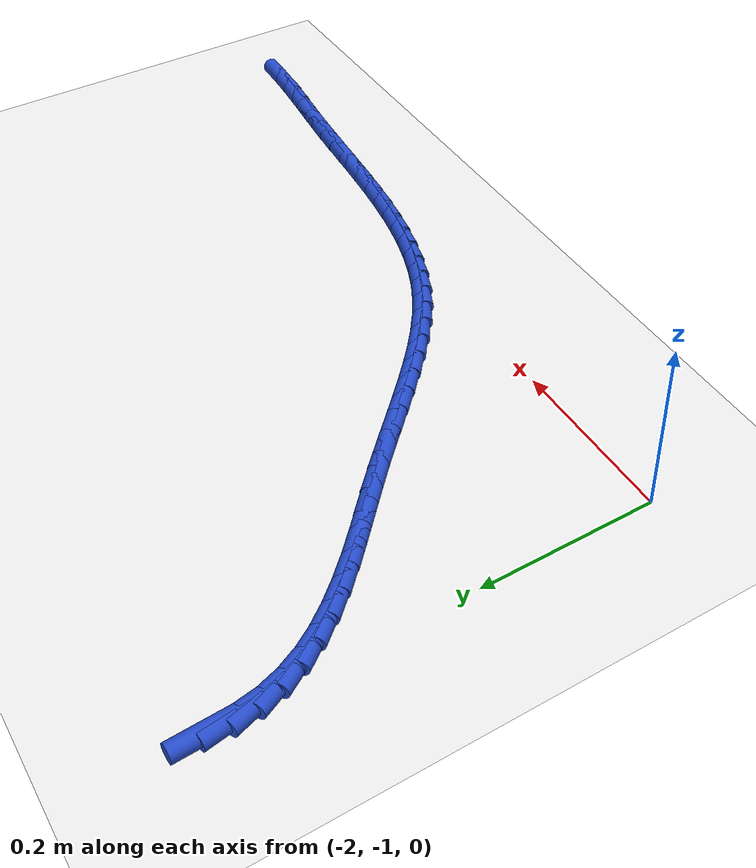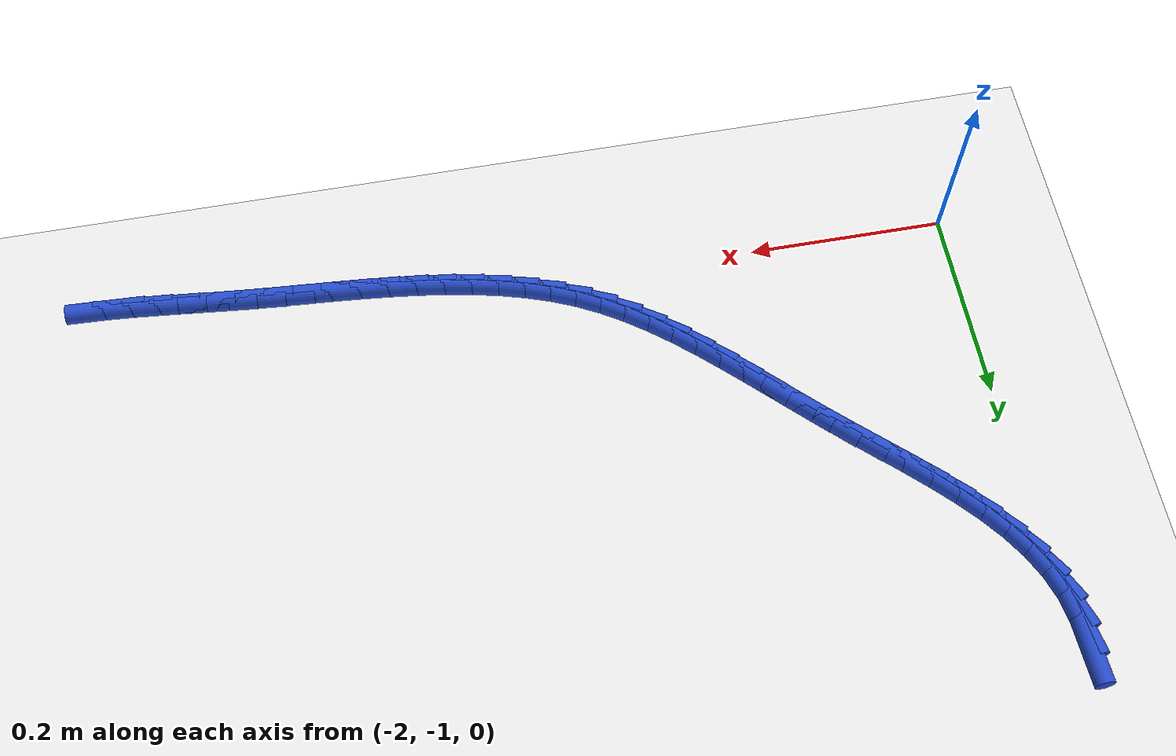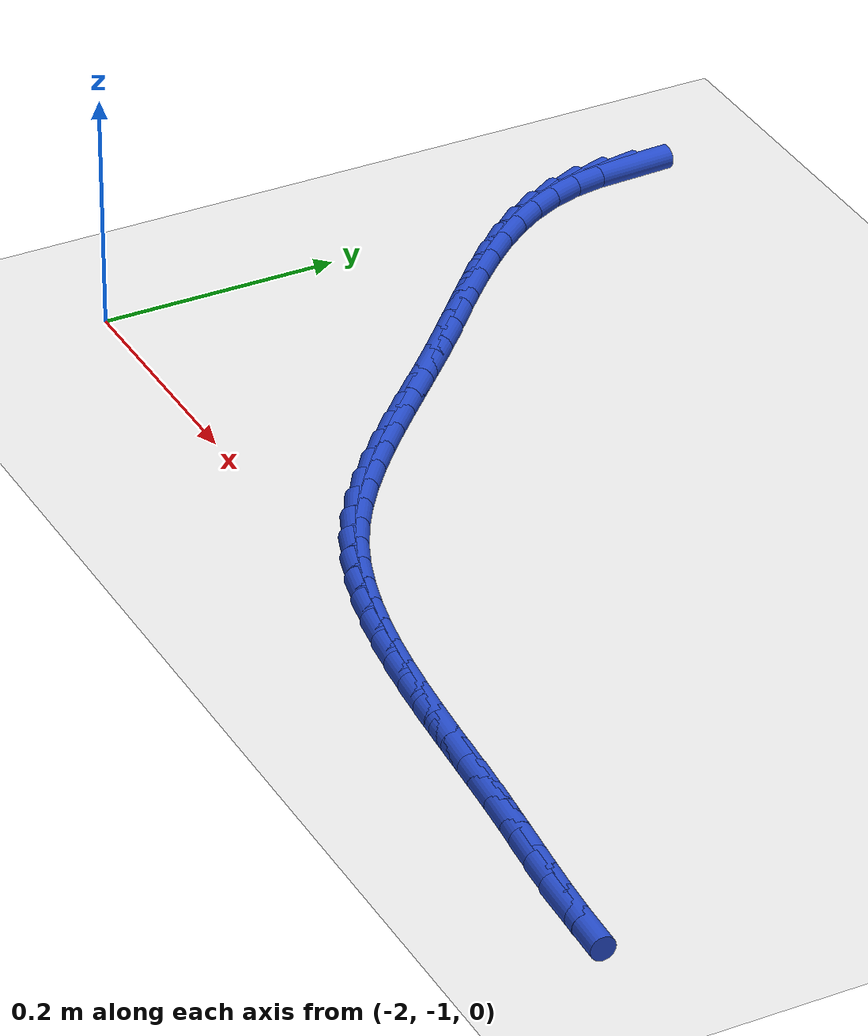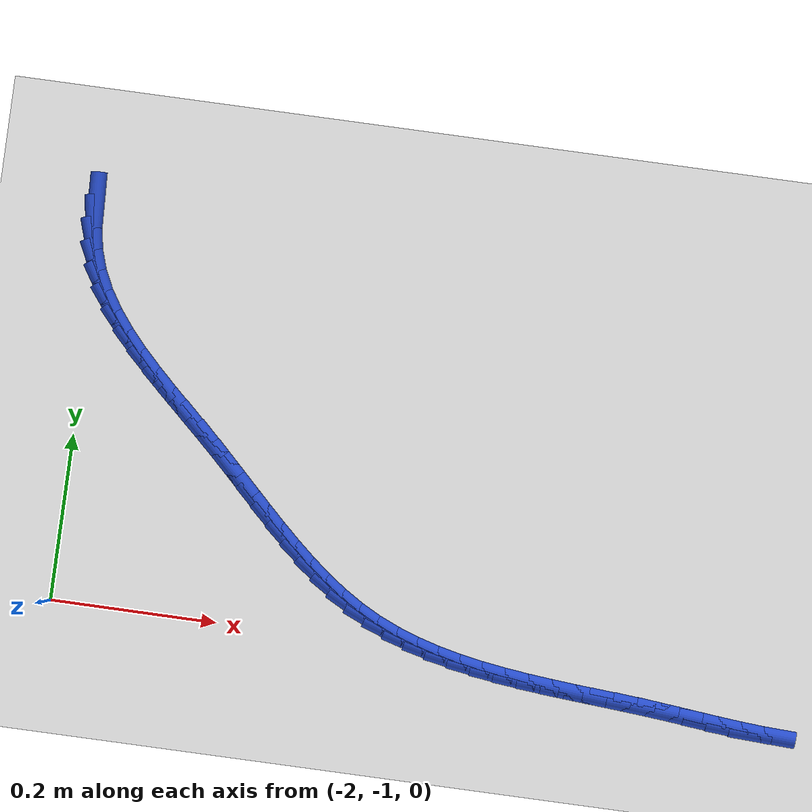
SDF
<sdf version="1.6">
 <world name="default">
  <model name="ground_plane">
   <static>1</static>
   <link name="link">
    <collision name="collision">
     <geometry><plane><normal>0 0 1</normal><size>100 100</size></plane></geometry>
     <surface><friction><ode><mu>100</mu><mu2>50</mu2></ode></friction></surface>
    </collision>
    <visual name="visual">
     <cast_shadows>0</cast_shadows>
     <geometry><plane><normal>0 0 1</normal><size>100 100</size></plane></geometry>
     <material>
      <script><uri>file://media/materials/scripts/gazebo.material</uri><name>Gazebo/WhiteGlow</name></script>
     </material>
    </visual>
   </link>
  </model>
  <model name="line">
   <link name="link_140">
    <pose>-2.0096430775557548 -0.5261544856233934 0.01 0 1.57 -1.5280074565273878</pose>
    <collision name="collision">
     <geometry><cylinder><radius>0.01</radius><length>0.08</length></cylinder></geometry>
    </collision>
    <visual name="visual">
     <material>
      <script><name>Gazebo/Blue</name><uri>file://media/materials/scripts/gazebo.material</uri></script>
     </material>
     <geometry><cylinder><radius>0.01</radius><length>0.08</length></cylinder></geometry>
    </visual>
   </link>
   <link name="link_141">
    <pose>-2.008498726055248 -0.5528823009448839 0.01 0 1.57 -1.4084340751156448</pose>
    <collision name="collision">
     <geometry><cylinder><radius>0.01</radius><length>0.08</length></cylinder></geometry>
    </collision>
    <visual name="visual">
     <material>
      <script><name>Gazebo/Blue</name><uri>file://media/materials/scripts/gazebo.material</uri></script>
     </material>
     <geometry><cylinder><radius>0.01</radius><length>0.08</length></cylinder></geometry>
    </visual>
   </link>
   <link name="link_142">
    <pose>-2.0042836034575258 -0.5786149962680517 0.01 0 1.57 -1.2595297627954403</pose>
    <collision name="collision">
     <geometry><cylinder><radius>0.01</radius><length>0.08</length></cylinder></geometry>
    </collision>
    <visual name="visual">
     <material>
      <script><name>Gazebo/Blue</name><uri>file://media/materials/scripts/gazebo.material</uri></script>
     </material>
     <geometry><cylinder><radius>0.01</radius><length>0.08</length></cylinder></geometry>
    </visual>
   </link>
   <link name="link_143">
    <pose>-1.9963625961331624 -0.6032354553919835 0.01 0 1.57 -1.1216560305754468</pose>
    <collision name="collision">
     <geometry><cylinder><radius>0.01</radius><length>0.08</length></cylinder></geometry>
    </collision>
    <visual name="visual">
     <material>
      <script><name>Gazebo/Blue</name><uri>file://media/materials/scripts/gazebo.material</uri></script>
     </material>
     <geometry><cylinder><radius>0.01</radius><length>0.08</length></cylinder></geometry>
    </visual>
   </link>
   <link name="link_144">
    <pose>-1.9849880988924686 -0.6268342325624374 0.01 0 1.57 -1.0073226256194265</pose>
    <collision name="collision">
     <geometry><cylinder><radius>0.01</radius><length>0.08</length></cylinder></geometry>
    </collision>
    <visual name="visual">
     <material>
      <script><name>Gazebo/Blue</name><uri>file://media/materials/scripts/gazebo.material</uri></script>
     </material>
     <geometry><cylinder><radius>0.01</radius><length>0.08</length></cylinder></geometry>
    </visual>
   </link>
   <link name="link_145">
    <pose>-1.9706339573745288 -0.6495536998901822 0.01 0 1.57 -0.9165226039413975</pose>
    <collision name="collision">
     <geometry><cylinder><radius>0.01</radius><length>0.08</length></cylinder></geometry>
    </collision>
    <visual name="visual">
     <material>
      <script><name>Gazebo/Blue</name><uri>file://media/materials/scripts/gazebo.material</uri></script>
     </material>
     <geometry><cylinder><radius>0.01</radius><length>0.08</length></cylinder></geometry>
    </visual>
   </link>
   <link name="link_146">
    <pose>-1.9537740172184277 -0.6715362294859879 0.01 0 1.57 -0.8472872394314085</pose>
    <collision name="collision">
     <geometry><cylinder><radius>0.01</radius><length>0.08</length></cylinder></geometry>
    </collision>
    <visual name="visual">
     <material>
      <script><name>Gazebo/Blue</name><uri>file://media/materials/scripts/gazebo.material</uri></script>
     </material>
     <geometry><cylinder><radius>0.01</radius><length>0.08</length></cylinder></geometry>
    </visual>
   </link>
   <link name="link_147">
    <pose>-1.9348821240632519 -0.6929241934606245 0.01 0 1.57 -0.7971352322259211</pose>
    <collision name="collision">
     <geometry><cylinder><radius>0.01</radius><length>0.08</length></cylinder></geometry>
    </collision>
    <visual name="visual">
     <material>
      <script><name>Gazebo/Blue</name><uri>file://media/materials/scripts/gazebo.material</uri></script>
     </material>
     <geometry><cylinder><radius>0.01</radius><length>0.08</length></cylinder></geometry>
    </visual>
   </link>
   <link name="link_148">
    <pose>-1.914432123548085 -0.7138599639248602 0.01 0 1.57 -0.7638571737055149</pose>
    <collision name="collision">
     <geometry><cylinder><radius>0.01</radius><length>0.08</length></cylinder></geometry>
    </collision>
    <visual name="visual">
     <material>
      <script><name>Gazebo/Blue</name><uri>file://media/materials/scripts/gazebo.material</uri></script>
     </material>
     <geometry><cylinder><radius>0.01</radius><length>0.08</length></cylinder></geometry>
    </visual>
   </link>
   <link name="link_149">
    <pose>-1.8928978613120149 -0.7344859129894655 0.01 0 1.57 -0.7458401071048975</pose>
    <collision name="collision">
     <geometry><cylinder><radius>0.01</radius><length>0.08</length></cylinder></geometry>
    </collision>
    <visual name="visual">
     <material>
      <script><name>Gazebo/Blue</name><uri>file://media/materials/scripts/gazebo.material</uri></script>
     </material>
     <geometry><cylinder><radius>0.01</radius><length>0.08</length></cylinder></geometry>
    </visual>
   </link>
   <link name="link_150">
    <pose>-1.8707531829941249 -0.7549444127652096 0.01 0 1.57 -0.7421653649475559</pose>
    <collision name="collision">
     <geometry><cylinder><radius>0.01</radius><length>0.08</length></cylinder></geometry>
    </collision>
    <visual name="visual">
     <material>
      <script><name>Gazebo/Blue</name><uri>file://media/materials/scripts/gazebo.material</uri></script>
     </material>
     <geometry><cylinder><radius>0.01</radius><length>0.08</length></cylinder></geometry>
    </visual>
   </link>
   <link name="link_151">
    <pose>-1.8484719342335005 -0.7753778353628621 0.01 0 1.57 -0.7524859376159344</pose>
    <collision name="collision">
     <geometry><cylinder><radius>0.01</radius><length>0.08</length></cylinder></geometry>
    </collision>
    <visual name="visual">
     <material>
      <script><name>Gazebo/Blue</name><uri>file://media/materials/scripts/gazebo.material</uri></script>
     </material>
     <geometry><cylinder><radius>0.01</radius><length>0.08</length></cylinder></geometry>
    </visual>
   </link>
   <link name="link_152">
    <pose>-1.8265241599310489 -0.7959264535682691 0.01 0 1.57 -0.7686079183546252</pose>
    <collision name="collision">
     <geometry><cylinder><radius>0.01</radius><length>0.08</length></cylinder></geometry>
    </collision>
    <visual name="visual">
     <material>
      <script><name>Gazebo/Blue</name><uri>file://media/materials/scripts/gazebo.material</uri></script>
     </material>
     <geometry><cylinder><radius>0.01</radius><length>0.08</length></cylinder></geometry>
    </visual>
   </link>
   <link name="link_153">
    <pose>-1.8051441373951091 -0.8166003147321077 0.01 0 1.57 -0.7771405462749347</pose>
    <collision name="collision">
     <geometry><cylinder><radius>0.01</radius><length>0.08</length></cylinder></geometry>
    </collision>
    <visual name="visual">
     <material>
      <script><name>Gazebo/Blue</name><uri>file://media/materials/scripts/gazebo.material</uri></script>
     </material>
     <geometry><cylinder><radius>0.01</radius><length>0.08</length></cylinder></geometry>
    </visual>
   </link>
   <link name="link_154">
    <pose>-1.7841961927001513 -0.8372051248878406 0.01 0 1.57 -0.776612072666279</pose>
    <collision name="collision">
     <geometry><cylinder><radius>0.01</radius><length>0.08</length></cylinder></geometry>
    </collision>
    <visual name="visual">
     <material>
      <script><name>Gazebo/Blue</name><uri>file://media/materials/scripts/gazebo.material</uri></script>
     </material>
     <geometry><cylinder><radius>0.01</radius><length>0.08</length></cylinder></geometry>
    </visual>
   </link>
   <link name="link_155">
    <pose>-1.7635122949679185 -0.8575287178151434 0.01 0 1.57 -0.766654491535598</pose>
    <collision name="collision">
     <geometry><cylinder><radius>0.01</radius><length>0.08</length></cylinder></geometry>
    </collision>
    <visual name="visual">
     <material>
      <script><name>Gazebo/Blue</name><uri>file://media/materials/scripts/gazebo.material</uri></script>
     </material>
     <geometry><cylinder><radius>0.01</radius><length>0.08</length></cylinder></geometry>
    </visual>
   </link>
   <link name="link_156">
    <pose>-1.7429244133201567 -0.8773589272936888 0.01 0 1.57 -0.7468285419045488</pose>
    <collision name="collision">
     <geometry><cylinder><radius>0.01</radius><length>0.08</length></cylinder></geometry>
    </collision>
    <visual name="visual">
     <material>
      <script><name>Gazebo/Blue</name><uri>file://media/materials/scripts/gazebo.material</uri></script>
     </material>
     <geometry><cylinder><radius>0.01</radius><length>0.08</length></cylinder></geometry>
    </visual>
   </link>
   <link name="link_157">
    <pose>-1.722264516878611 -0.896483587103153 0.01 0 1.57 -0.716644197941528</pose>
    <collision name="collision">
     <geometry><cylinder><radius>0.01</radius><length>0.08</length></cylinder></geometry>
    </collision>
    <visual name="visual">
     <material>
      <script><name>Gazebo/Blue</name><uri>file://media/materials/scripts/gazebo.material</uri></script>
     </material>
     <geometry><cylinder><radius>0.01</radius><length>0.08</length></cylinder></geometry>
    </visual>
   </link>
   <link name="link_158">
    <pose>-1.7013645747650252 -0.9146905310232101 0.01 0 1.57 -0.6756173266168611</pose>
    <collision name="collision">
     <geometry><cylinder><radius>0.01</radius><length>0.08</length></cylinder></geometry>
    </collision>
    <visual name="visual">
     <material>
      <script><name>Gazebo/Blue</name><uri>file://media/materials/scripts/gazebo.material</uri></script>
     </material>
     <geometry><cylinder><radius>0.01</radius><length>0.08</length></cylinder></geometry>
    </visual>
   </link>
   <link name="link_159">
    <pose>-1.6800565561011436 -0.9317675928335342 0.01 0 1.57 -0.6233739973266872</pose>
    <collision name="collision">
     <geometry><cylinder><radius>0.01</radius><length>0.08</length></cylinder></geometry>
    </collision>
    <visual name="visual">
     <material>
      <script><name>Gazebo/Blue</name><uri>file://media/materials/scripts/gazebo.material</uri></script>
     </material>
     <geometry><cylinder><radius>0.01</radius><length>0.08</length></cylinder></geometry>
    </visual>
   </link>
   <link name="link_160">
    <pose>-1.658172430008711 -0.9475026063138009 0.01 0 1.57 -0.5598102436202478</pose>
    <collision name="collision">
     <geometry><cylinder><radius>0.01</radius><length>0.08</length></cylinder></geometry>
    </collision>
    <visual name="visual">
     <material>
      <script><name>Gazebo/Blue</name><uri>file://media/materials/scripts/gazebo.material</uri></script>
     </material>
     <geometry><cylinder><radius>0.01</radius><length>0.08</length></cylinder></geometry>
    </visual>
   </link>
   <link name="link_161">
    <pose>-1.6355441656094718 -0.9616834052436842 0.01 0 1.57 -0.4854051199218421</pose>
    <collision name="collision">
     <geometry><cylinder><radius>0.01</radius><length>0.08</length></cylinder></geometry>
    </collision>
    <visual name="visual">
     <material>
      <script><name>Gazebo/Blue</name><uri>file://media/materials/scripts/gazebo.material</uri></script>
     </material>
     <geometry><cylinder><radius>0.01</radius><length>0.08</length></cylinder></geometry>
    </visual>
   </link>
   <link name="link_162">
    <pose>-1.612005308948386 -0.974100161509386 0.01 0 1.57 -0.40764064463473265</pose>
    <collision name="collision">
     <geometry><cylinder><radius>0.01</radius><length>0.08</length></cylinder></geometry>
    </collision>
    <visual name="visual">
     <material>
      <script><name>Gazebo/Blue</name><uri>file://media/materials/scripts/gazebo.material</uri></script>
     </material>
     <geometry><cylinder><radius>0.01</radius><length>0.08</length></cylinder></geometry>
    </visual>
   </link>
   <link name="link_163">
    <pose>-1.5874870675320816 -0.9846878497996229 0.01 0 1.57 -0.33758710846364953</pose>
    <collision name="collision">
     <geometry><cylinder><radius>0.01</radius><length>0.08</length></cylinder></geometry>
    </collision>
    <visual name="visual">
     <material>
      <script><name>Gazebo/Blue</name><uri>file://media/materials/scripts/gazebo.material</uri></script>
     </material>
     <geometry><cylinder><radius>0.01</radius><length>0.08</length></cylinder></geometry>
    </visual>
   </link>
   <link name="link_164">
    <pose>-1.5620738020961376 -0.9936085253360892 0.01 0 1.57 -0.27642340447862057</pose>
    <collision name="collision">
     <geometry><cylinder><radius>0.01</radius><length>0.08</length></cylinder></geometry>
    </collision>
    <visual name="visual">
     <material>
      <script><name>Gazebo/Blue</name><uri>file://media/materials/scripts/gazebo.material</uri></script>
     </material>
     <geometry><cylinder><radius>0.01</radius><length>0.08</length></cylinder></geometry>
    </visual>
   </link>
   <link name="link_165">
    <pose>-1.535863257864375 -1.0010440885422023 0.01 0 1.57 -0.2240568952081737</pose>
    <collision name="collision">
     <geometry><cylinder><radius>0.01</radius><length>0.08</length></cylinder></geometry>
    </collision>
    <visual name="visual">
     <material>
      <script><name>Gazebo/Blue</name><uri>file://media/materials/scripts/gazebo.material</uri></script>
     </material>
     <geometry><cylinder><radius>0.01</radius><length>0.08</length></cylinder></geometry>
    </visual>
   </link>
   <link name="link_166">
    <pose>-1.5089531800606135 -1.0071764398413798 0.01 0 1.57 -0.18016600531104532</pose>
    <collision name="collision">
     <geometry><cylinder><radius>0.01</radius><length>0.08</length></cylinder></geometry>
    </collision>
    <visual name="visual">
     <material>
      <script><name>Gazebo/Blue</name><uri>file://media/materials/scripts/gazebo.material</uri></script>
     </material>
     <geometry><cylinder><radius>0.01</radius><length>0.08</length></cylinder></geometry>
    </visual>
   </link>
   <link name="link_167">
    <pose>-1.481441313908672 -1.012187479657038 0.01 0 1.57 -0.1443222908931868</pose>
    <collision name="collision">
     <geometry><cylinder><radius>0.01</radius><length>0.08</length></cylinder></geometry>
    </collision>
    <visual name="visual">
     <material>
      <script><name>Gazebo/Blue</name><uri>file://media/materials/scripts/gazebo.material</uri></script>
     </material>
     <geometry><cylinder><radius>0.01</radius><length>0.08</length></cylinder></geometry>
    </visual>
   </link>
   <link name="link_168">
    <pose>-1.4534254046323711 -1.0162591084125943 0.01 0 1.57 -0.11607893602324391</pose>
    <collision name="collision">
     <geometry><cylinder><radius>0.01</radius><length>0.08</length></cylinder></geometry>
    </collision>
    <visual name="visual">
     <material>
      <script><name>Gazebo/Blue</name><uri>file://media/materials/scripts/gazebo.material</uri></script>
     </material>
     <geometry><cylinder><radius>0.01</radius><length>0.08</length></cylinder></geometry>
    </visual>
   </link>
   <link name="link_169">
    <pose>-1.425003197455531 -1.0195732265314659 0.01 0 1.57 -0.09502914479789382</pose>
    <collision name="collision">
     <geometry><cylinder><radius>0.01</radius><length>0.08</length></cylinder></geometry>
    </collision>
    <visual name="visual">
     <material>
      <script><name>Gazebo/Blue</name><uri>file://media/materials/scripts/gazebo.material</uri></script>
     </material>
     <geometry><cylinder><radius>0.01</radius><length>0.08</length></cylinder></geometry>
    </visual>
   </link>
   <link name="link_170">
    <pose>-1.3962724376019697 -1.0223117344370696 0.01 0 1.57 -0.08084178042679095</pose>
    <collision name="collision">
     <geometry><cylinder><radius>0.01</radius><length>0.08</length></cylinder></geometry>
    </collision>
    <visual name="visual">
     <material>
      <script><name>Gazebo/Blue</name><uri>file://media/materials/scripts/gazebo.material</uri></script>
     </material>
     <geometry><cylinder><radius>0.01</radius><length>0.08</length></cylinder></geometry>
    </visual>
   </link>
   <link name="link_171">
    <pose>-1.3673308702955098 -1.0246565325528225 0.01 0 1.57 -0.07328158130507874</pose>
    <collision name="collision">
     <geometry><cylinder><radius>0.01</radius><length>0.08</length></cylinder></geometry>
    </collision>
    <visual name="visual">
     <material>
      <script><name>Gazebo/Blue</name><uri>file://media/materials/scripts/gazebo.material</uri></script>
     </material>
     <geometry><cylinder><radius>0.01</radius><length>0.08</length></cylinder></geometry>
    </visual>
   </link>
   <link name="link_172">
    <pose>-1.3382762407599695 -1.0267895213021416 0.01 0 1.57 -0.07221967881973698</pose>
    <collision name="collision">
     <geometry><cylinder><radius>0.01</radius><length>0.08</length></cylinder></geometry>
    </collision>
    <visual name="visual">
     <material>
      <script><name>Gazebo/Blue</name><uri>file://media/materials/scripts/gazebo.material</uri></script>
     </material>
     <geometry><cylinder><radius>0.01</radius><length>0.08</length></cylinder></geometry>
    </visual>
   </link>
   <link name="link_173">
    <pose>-1.3092062942191687 -1.0288926011084443 0.01 0 1.57 -0.07763819185512785</pose>
    <collision name="collision">
     <geometry><cylinder><radius>0.01</radius><length>0.08</length></cylinder></geometry>
    </collision>
    <visual name="visual">
     <material>
      <script><name>Gazebo/Blue</name><uri>file://media/materials/scripts/gazebo.material</uri></script>
     </material>
     <geometry><cylinder><radius>0.01</radius><length>0.08</length></cylinder></geometry>
    </visual>
   </link>
   <link name="link_174">
    <pose>-1.2802187758969277 -1.0311476723951478 0.01 0 1.57 -0.08921589246002272</pose>
    <collision name="collision">
     <geometry><cylinder><radius>0.01</radius><length>0.08</length></cylinder></geometry>
    </collision>
    <visual name="visual">
     <material>
      <script><name>Gazebo/Blue</name><uri>file://media/materials/scripts/gazebo.material</uri></script>
     </material>
     <geometry><cylinder><radius>0.01</radius><length>0.08</length></cylinder></geometry>
    </visual>
   </link>
   <link name="link_175">
    <pose>-1.2514087052352103 -1.033724829799117 0.01 0 1.57 -0.099026681902336</pose>
    <collision name="collision">
     <geometry><cylinder><radius>0.01</radius><length>0.08</length></cylinder></geometry>
    </collision>
    <visual name="visual">
     <material>
      <script><name>Gazebo/Blue</name><uri>file://media/materials/scripts/gazebo.material</uri></script>
     </material>
     <geometry><cylinder><radius>0.01</radius><length>0.08</length></cylinder></geometry>
    </visual>
   </link>
   <link name="link_176">
    <pose>-1.2228182679742194 -1.0365653369506216 0.01 0 1.57 -0.0996726684639841</pose>
    <collision name="collision">
     <geometry><cylinder><radius>0.01</radius><length>0.08</length></cylinder></geometry>
    </collision>
    <visual name="visual">
     <material>
      <script><name>Gazebo/Blue</name><uri>file://media/materials/scripts/gazebo.material</uri></script>
     </material>
     <geometry><cylinder><radius>0.01</radius><length>0.08</length></cylinder></geometry>
    </visual>
   </link>
   <link name="link_177">
    <pose>-1.1944417743976292 -1.039403101407146 0.01 0 1.57 -0.09067837724517339</pose>
    <collision name="collision">
     <geometry><cylinder><radius>0.01</radius><length>0.08</length></cylinder></geometry>
    </collision>
    <visual name="visual">
     <material>
      <script><name>Gazebo/Blue</name><uri>file://media/materials/scripts/gazebo.material</uri></script>
     </material>
     <geometry><cylinder><radius>0.01</radius><length>0.08</length></cylinder></geometry>
    </visual>
   </link>
   <link name="link_178">
    <pose>-1.1662718036761817 -1.0419645330059228 0.01 0 1.57 -0.07179082253734709</pose>
    <collision name="collision">
     <geometry><cylinder><radius>0.01</radius><length>0.08</length></cylinder></geometry>
    </collision>
    <visual name="visual">
     <material>
      <script><name>Gazebo/Blue</name><uri>file://media/materials/scripts/gazebo.material</uri></script>
     </material>
     <geometry><cylinder><radius>0.01</radius><length>0.08</length></cylinder></geometry>
    </visual>
   </link>
   <link name="link_179">
    <pose>-1.1383009349806164 -1.0439760415841848 0.01 0 1.57 -0.042739621032557455</pose>
    <collision name="collision">
     <geometry><cylinder><radius>0.01</radius><length>0.08</length></cylinder></geometry>
    </collision>
    <visual name="visual">
     <material>
      <script><name>Gazebo/Blue</name><uri>file://media/materials/scripts/gazebo.material</uri></script>
     </material>
     <geometry><cylinder><radius>0.01</radius><length>0.08</length></cylinder></geometry>
    </visual>
   </link>
  </model>
 </world>
</sdf>
